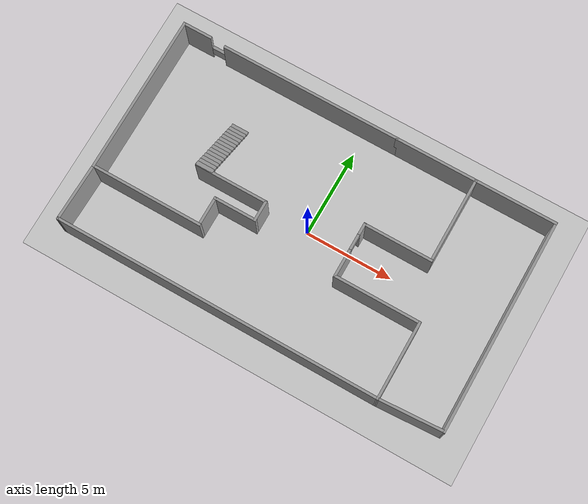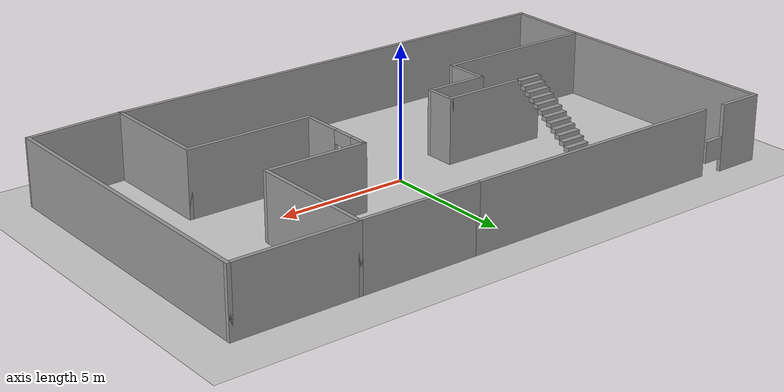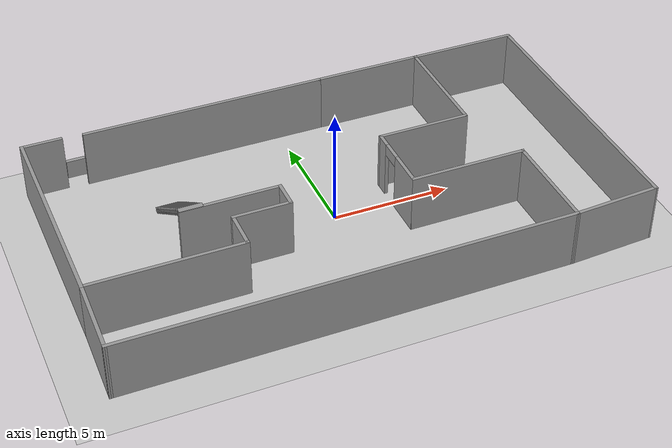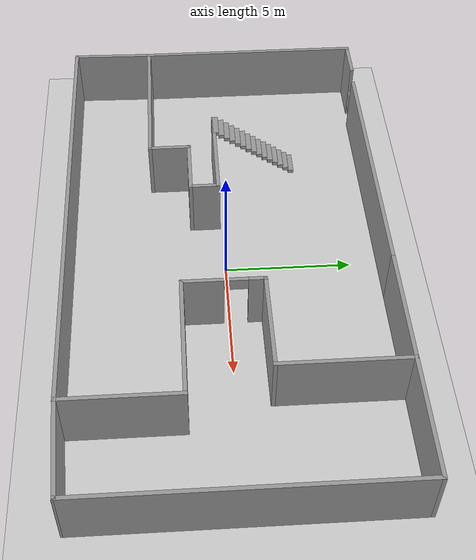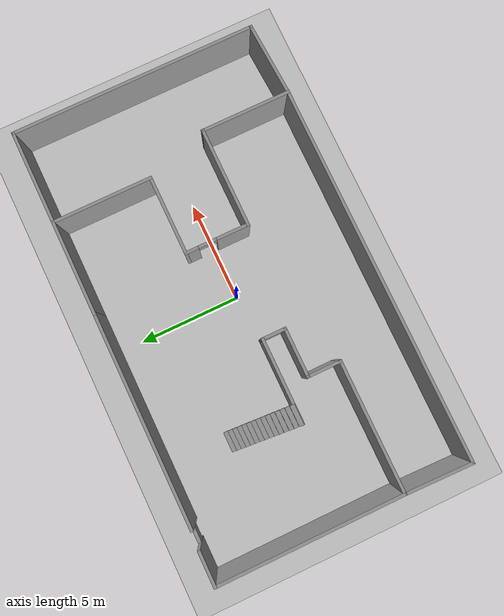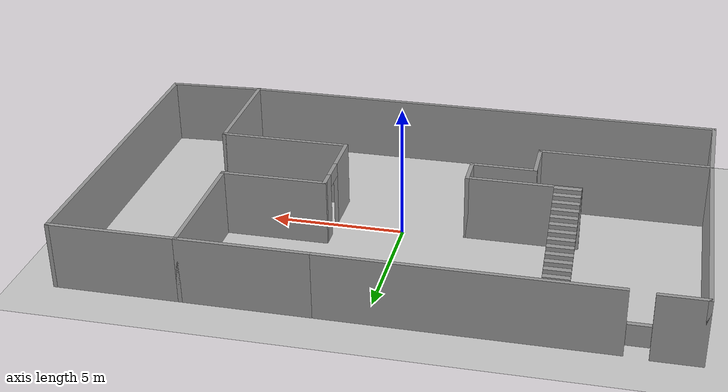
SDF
<sdf version="1.6">
 <world name="default">
  <light name="sun" type="directional">
   <pose>0 0 10 0 -0 0</pose>
   <diffuse>0.8 0.8 0.8 1</diffuse>
   <specular>0.2 0.2 0.2 1</specular>
   <attenuation>
    <range>1000</range>
    <constant>0.9</constant>
    <linear>0.01</linear>
    <quadratic>0.001</quadratic>
   </attenuation>
   <direction>-0.5 0.1 -0.9</direction>
  </light>
  <model name="ground_plane">
   <static>1</static>
   <link name="link">
    <collision name="collision">
     <geometry><plane><normal>0 0 1</normal><size>100 100</size></plane></geometry>
     <surface><friction><ode><mu>100</mu><mu2>50</mu2></ode></friction></surface>
    </collision>
    <visual name="visual">
     <cast_shadows>0</cast_shadows>
     <geometry><plane><normal>0 0 1</normal><size>100 100</size></plane></geometry>
     <material>
      <script><uri>file://media/materials/scripts/gazebo.material</uri><name>Gazebo/Grey</name></script>
     </material>
    </visual>
   </link>
  </model>
  <gravity>0 0 -9.8</gravity>
  <magnetic_field>6e-06 2.3e-05 -4.2e-05</magnetic_field>
  <atmosphere type="adiabatic"/>
  <physics name="default_physics" default="0" type="ode">
   <max_step_size>0.01</max_step_size>
   <real_time_factor>1</real_time_factor>
   <real_time_update_rate>100</real_time_update_rate>
  </physics>
  <scene><ambient>0.4 0.4 0.4 1</ambient><background>0.7 0.7 0.7 1</background><shadows>1</shadows></scene>
  <audio><device>default</device></audio>
  <spherical_coordinates>
   <surface_model>EARTH_WGS84</surface_model>
   <latitude_deg>0</latitude_deg>
   <longitude_deg>0</longitude_deg>
   <elevation>0</elevation>
   <heading_deg>0</heading_deg>
  </spherical_coordinates>
  <model name="sample_room">
   <pose>-0.047543 0.044067 0 0 -0 0</pose>
   <link name="Stairs_0">
    <visual name="Stairs_0_Visual_0">
     <pose>-5.98337 3.1343 0.083333 0 -0 0</pose>
     <geometry><box><size>1 0.233333 0.166667</size></box></geometry>
     <material>
      <script><uri>file://media/materials/scripts/gazebo.material</uri><name>Gazebo/Grey</name></script>
      <ambient>1 1 1 1</ambient>
     </material>
    </visual>
    <collision name="Stairs_0_Collision_0">
     <geometry><box><size>1 0.233333 0.166667</size></box></geometry>
     <pose>-5.98337 3.1343 0.083333 0 -0 0</pose>
    </collision>
    <visual name="Stairs_0_Visual_1">
     <pose>-5.98337 2.90096 0.25 0 -0 0</pose>
     <geometry><box><size>1 0.233333 0.166667</size></box></geometry>
     <material>
      <script><uri>file://media/materials/scripts/gazebo.material</uri><name>Gazebo/Grey</name></script>
      <ambient>1 1 1 1</ambient>
     </material>
    </visual>
    <collision name="Stairs_0_Collision_1">
     <geometry><box><size>1 0.233333 0.166667</size></box></geometry>
     <pose>-5.98337 2.90096 0.25 0 -0 0</pose>
    </collision>
    <visual name="Stairs_0_Visual_2">
     <pose>-5.98337 2.66763 0.416667 0 -0 0</pose>
     <geometry><box><size>1 0.233333 0.166667</size></box></geometry>
     <material>
      <script><uri>file://media/materials/scripts/gazebo.material</uri><name>Gazebo/Grey</name></script>
      <ambient>1 1 1 1</ambient>
     </material>
    </visual>
    <collision name="Stairs_0_Collision_2">
     <geometry><box><size>1 0.233333 0.166667</size></box></geometry>
     <pose>-5.98337 2.66763 0.416667 0 -0 0</pose>
    </collision>
    <visual name="Stairs_0_Visual_3">
     <pose>-5.98337 2.4343 0.583333 0 -0 0</pose>
     <geometry><box><size>1 0.233333 0.166667</size></box></geometry>
     <material>
      <script><uri>file://media/materials/scripts/gazebo.material</uri><name>Gazebo/Grey</name></script>
      <ambient>1 1 1 1</ambient>
     </material>
    </visual>
    <collision name="Stairs_0_Collision_3">
     <geometry><box><size>1 0.233333 0.166667</size></box></geometry>
     <pose>-5.98337 2.4343 0.583333 0 -0 0</pose>
    </collision>
    <visual name="Stairs_0_Visual_4">
     <pose>-5.98337 2.20097 0.75 0 -0 0</pose>
     <geometry><box><size>1 0.233333 0.166667</size></box></geometry>
     <material>
      <script><uri>file://media/materials/scripts/gazebo.material</uri><name>Gazebo/Grey</name></script>
      <ambient>1 1 1 1</ambient>
     </material>
    </visual>
    <collision name="Stairs_0_Collision_4">
     <geometry><box><size>1 0.233333 0.166667</size></box></geometry>
     <pose>-5.98337 2.20097 0.75 0 -0 0</pose>
    </collision>
    <visual name="Stairs_0_Visual_5">
     <pose>-5.98337 1.96763 0.916667 0 -0 0</pose>
     <geometry><box><size>1 0.233333 0.166667</size></box></geometry>
     <material>
      <script><uri>file://media/materials/scripts/gazebo.material</uri><name>Gazebo/Grey</name></script>
      <ambient>1 1 1 1</ambient>
     </material>
    </visual>
    <collision name="Stairs_0_Collision_5">
     <geometry><box><size>1 0.233333 0.166667</size></box></geometry>
     <pose>-5.98337 1.96763 0.916667 0 -0 0</pose>
    </collision>
    <visual name="Stairs_0_Visual_6">
     <pose>-5.98337 1.7343 1.08333 0 -0 0</pose>
     <geometry><box><size>1 0.233333 0.166667</size></box></geometry>
     <material>
      <script><uri>file://media/materials/scripts/gazebo.material</uri><name>Gazebo/Grey</name></script>
      <ambient>1 1 1 1</ambient>
     </material>
    </visual>
    <collision name="Stairs_0_Collision_6">
     <geometry><box><size>1 0.233333 0.166667</size></box></geometry>
     <pose>-5.98337 1.7343 1.08333 0 -0 0</pose>
    </collision>
    <visual name="Stairs_0_Visual_7">
     <pose>-5.98337 1.50097 1.25 0 -0 0</pose>
     <geometry><box><size>1 0.233333 0.166667</size></box></geometry>
     <material>
      <script><uri>file://media/materials/scripts/gazebo.material</uri><name>Gazebo/Grey</name></script>
      <ambient>1 1 1 1</ambient>
     </material>
    </visual>
    <collision name="Stairs_0_Collision_7">
     <geometry><box><size>1 0.233333 0.166667</size></box></geometry>
     <pose>-5.98337 1.50097 1.25 0 -0 0</pose>
    </collision>
    <visual name="Stairs_0_Visual_8">
     <pose>-5.98337 1.26763 1.41667 0 -0 0</pose>
     <geometry><box><size>1 0.233333 0.166667</size></box></geometry>
     <material>
      <script><uri>file://media/materials/scripts/gazebo.material</uri><name>Gazebo/Grey</name></script>
      <ambient>1 1 1 1</ambient>
     </material>
    </visual>
    <collision name="Stairs_0_Collision_8">
     <geometry><box><size>1 0.233333 0.166667</size></box></geometry>
     <pose>-5.98337 1.26763 1.41667 0 -0 0</pose>
    </collision>
    <visual name="Stairs_0_Visual_9">
     <pose>-5.98337 1.0343 1.58333 0 -0 0</pose>
     <geometry><box><size>1 0.233333 0.166667</size></box></geometry>
     <material>
      <script><uri>file://media/materials/scripts/gazebo.material</uri><name>Gazebo/Grey</name></script>
      <ambient>1 1 1 1</ambient>
     </material>
    </visual>
    <collision name="Stairs_0_Collision_9">
     <geometry><box><size>1 0.233333 0.166667</size></box></geometry>
     <pose>-5.98337 1.0343 1.58333 0 -0 0</pose>
    </collision>
    <visual name="Stairs_0_Visual_10">
     <pose>-5.98337 0.800965 1.75 0 -0 0</pose>
     <geometry><box><size>1 0.233333 0.166667</size></box></geometry>
     <material>
      <script><uri>file://media/materials/scripts/gazebo.material</uri><name>Gazebo/Grey</name></script>
      <ambient>1 1 1 1</ambient>
     </material>
    </visual>
    <collision name="Stairs_0_Collision_10">
     <geometry><box><size>1 0.233333 0.166667</size></box></geometry>
     <pose>-5.98337 0.800965 1.75 0 -0 0</pose>
    </collision>
    <visual name="Stairs_0_Visual_11">
     <pose>-5.98337 0.567632 1.91667 0 -0 0</pose>
     <geometry><box><size>1 0.233333 0.166667</size></box></geometry>
     <material>
      <script><uri>file://media/materials/scripts/gazebo.material</uri><name>Gazebo/Grey</name></script>
      <ambient>1 1 1 1</ambient>
     </material>
    </visual>
    <collision name="Stairs_0_Collision_11">
     <geometry><box><size>1 0.233333 0.166667</size></box></geometry>
     <pose>-5.98337 0.567632 1.91667 0 -0 0</pose>
    </collision>
    <visual name="Stairs_0_Visual_12">
     <pose>-5.98337 0.334299 2.08333 0 -0 0</pose>
     <geometry><box><size>1 0.233333 0.166667</size></box></geometry>
     <material>
      <script><uri>file://media/materials/scripts/gazebo.material</uri><name>Gazebo/Grey</name></script>
      <ambient>1 1 1 1</ambient>
     </material>
    </visual>
    <collision name="Stairs_0_Collision_12">
     <geometry><box><size>1 0.233333 0.166667</size></box></geometry>
     <pose>-5.98337 0.334299 2.08333 0 -0 0</pose>
    </collision>
    <visual name="Stairs_0_Visual_13">
     <pose>-5.98337 0.100965 2.25 0 -0 0</pose>
     <geometry><box><size>1 0.233333 0.166667</size></box></geometry>
     <material>
      <script><uri>file://media/materials/scripts/gazebo.material</uri><name>Gazebo/Grey</name></script>
      <ambient>1 1 1 1</ambient>
     </material>
    </visual>
    <collision name="Stairs_0_Collision_13">
     <geometry><box><size>1 0.233333 0.166667</size></box></geometry>
     <pose>-5.98337 0.100965 2.25 0 -0 0</pose>
    </collision>
    <visual name="Stairs_0_Visual_14">
     <pose>-5.98337 -0.132368 2.41667 0 -0 0</pose>
     <geometry><box><size>1 0.233333 0.166667</size></box></geometry>
     <material>
      <script><uri>file://media/materials/scripts/gazebo.material</uri><name>Gazebo/Grey</name></script>
      <ambient>1 1 1 1</ambient>
     </material>
    </visual>
    <collision name="Stairs_0_Collision_14">
     <geometry><box><size>1 0.233333 0.166667</size></box></geometry>
     <pose>-5.98337 -0.132368 2.41667 0 -0 0</pose>
    </collision>
   </link>
   <link name="Wall_1">
    <collision name="Wall_1_Collision">
     <geometry><box><size>4.25 0.15 2.5</size></box></geometry>
     <pose>0 0 1.25 0 -0 0</pose>
    </collision>
    <visual name="Wall_1_Visual">
     <pose>0 0 1.25 0 -0 0</pose>
     <geometry><box><size>4.25 0.15 2.5</size></box></geometry>
     <material>
      <script><uri>file://media/materials/scripts/gazebo.material</uri><name>Gazebo/Grey</name></script>
      <ambient>1 1 1 1</ambient>
     </material>
    </visual>
    <pose>-4.37477 -0.208857 0 0 -0 0</pose>
   </link>
   <link name="Wall_10">
    <collision name="Wall_10_Collision">
     <geometry><box><size>4.75 0.15 2.5</size></box></geometry>
     <pose>0 0 1.25 0 -0 0</pose>
    </collision>
    <visual name="Wall_10_Visual">
     <pose>0 0 1.25 0 -0 0</pose>
     <geometry><box><size>4.75 0.15 2.5</size></box></geometry>
     <material>
      <script><uri>file://media/materials/scripts/gazebo.material</uri><name>Gazebo/Grey</name></script>
      <ambient>1 1 1 1</ambient>
     </material>
    </visual>
    <pose>4.19884 6.1129 0 0 -0 0</pose>
   </link>
   <link name="Wall_11">
    <collision name="Wall_11_Collision">
     <geometry><box><size>5 0.15 2.5</size></box></geometry>
     <pose>0 0 1.25 0 -0 0</pose>
    </collision>
    <visual name="Wall_11_Visual">
     <pose>0 0 1.25 0 -0 0</pose>
     <geometry><box><size>5 0.15 2.5</size></box></geometry>
     <material>
      <script><uri>file://media/materials/scripts/gazebo.material</uri><name>Gazebo/Grey</name></script>
      <ambient>1 1 1 1</ambient>
     </material>
    </visual>
    <pose>6.49884 3.6879 0 0 0 -1.5708</pose>
   </link>
   <link name="Wall_12">
    <collision name="Wall_12_Collision">
     <geometry><box><size>4 0.15 2.5</size></box></geometry>
     <pose>0 0 1.25 0 -0 0</pose>
    </collision>
    <visual name="Wall_12_Visual">
     <pose>0 0 1.25 0 -0 0</pose>
     <geometry><box><size>4 0.15 2.5</size></box></geometry>
     <material>
      <script><uri>file://media/materials/scripts/gazebo.material</uri><name>Gazebo/Grey</name></script>
      <ambient>1 1 1 1</ambient>
     </material>
    </visual>
    <pose>4.57384 1.2629 0 0 -0 3.14159</pose>
   </link>
   <link name="Wall_13">
    <pose>2.64884 -0.287099 0 0 0 -1.5708</pose>
    <visual name="Wall_13_Visual_0">
     <pose>-1.27438 0 1.25 0 -0 0</pose>
     <geometry><box><size>0.701241 0.15 2.5</size></box></geometry>
     <material>
      <script><uri>file://media/materials/scripts/gazebo.material</uri><name>Gazebo/Grey</name></script>
      <ambient>1 1 1 1</ambient>
     </material>
    </visual>
    <collision name="Wall_13_Collision_0">
     <geometry><box><size>0.701241 0.15 2.5</size></box></geometry>
     <pose>-1.27438 0 1.25 0 -0 0</pose>
    </collision>
    <visual name="Wall_13_Visual_1">
     <pose>0.80062 0 1.25 0 -0 0</pose>
     <geometry><box><size>1.64876 0.15 2.5</size></box></geometry>
     <material>
      <script><uri>file://media/materials/scripts/gazebo.material</uri><name>Gazebo/Grey</name></script>
      <ambient>1 1 1 1</ambient>
     </material>
    </visual>
    <collision name="Wall_13_Collision_1">
     <geometry><box><size>1.64876 0.15 2.5</size></box></geometry>
     <pose>0.80062 0 1.25 0 -0 0</pose>
    </collision>
    <visual name="Wall_13_Visual_2">
     <pose>-0.473759 0 2.25 0 -0 0</pose>
     <geometry><box><size>0.9 0.15 0.5</size></box></geometry>
     <material>
      <script><uri>file://media/materials/scripts/gazebo.material</uri><name>Gazebo/Grey</name></script>
      <ambient>1 1 1 1</ambient>
     </material>
    </visual>
    <collision name="Wall_13_Collision_2">
     <geometry><box><size>0.9 0.15 0.5</size></box></geometry>
     <pose>-0.473759 0 2.25 0 -0 0</pose>
    </collision>
   </link>
   <link name="Wall_14">
    <collision name="Wall_14_Collision">
     <geometry><box><size>5 0.15 2.5</size></box></geometry>
     <pose>0 0 1.25 0 -0 0</pose>
    </collision>
    <visual name="Wall_14_Visual">
     <pose>0 0 1.25 0 -0 0</pose>
     <geometry><box><size>5 0.15 2.5</size></box></geometry>
     <material>
      <script><uri>file://media/materials/scripts/gazebo.material</uri><name>Gazebo/Grey</name></script>
      <ambient>1 1 1 1</ambient>
     </material>
    </visual>
    <pose>5.07384 -1.8371 0 0 -0 0</pose>
   </link>
   <link name="Wall_15">
    <collision name="Wall_15_Collision">
     <geometry><box><size>4.5 0.15 2.5</size></box></geometry>
     <pose>0 0 1.25 0 -0 0</pose>
    </collision>
    <visual name="Wall_15_Visual">
     <pose>0 0 1.25 0 -0 0</pose>
     <geometry><box><size>4.5 0.15 2.5</size></box></geometry>
     <material>
      <script><uri>file://media/materials/scripts/gazebo.material</uri><name>Gazebo/Grey</name></script>
      <ambient>1 1 1 1</ambient>
     </material>
    </visual>
    <pose>7.49884 -4.0121 0 0 0 -1.5708</pose>
   </link>
   <link name="Wall_16">
    <collision name="Wall_16_Collision">
     <geometry><box><size>18.75 0.15 2.5</size></box></geometry>
     <pose>0 0 1.25 0 -0 0</pose>
    </collision>
    <visual name="Wall_16_Visual">
     <pose>0 0 1.25 0 -0 0</pose>
     <geometry><box><size>18.75 0.15 2.5</size></box></geometry>
     <material>
      <script><uri>file://media/materials/scripts/gazebo.material</uri><name>Gazebo/Grey</name></script>
      <ambient>1 1 1 1</ambient>
     </material>
    </visual>
    <pose>-1.80116 -6.1871 0 0 -0 3.14159</pose>
   </link>
   <link name="Wall_17">
    <collision name="Wall_17_Collision">
     <geometry><box><size>3.42913 0.15 2.5</size></box></geometry>
     <pose>0 0 1.25 0 -0 0</pose>
    </collision>
    <visual name="Wall_17_Visual">
     <pose>0 0 1.25 0 -0 0</pose>
     <geometry><box><size>3.42913 0.15 2.5</size></box></geometry>
     <material>
      <script><uri>file://media/materials/scripts/gazebo.material</uri><name>Gazebo/Grey</name></script>
      <ambient>1 1 1 1</ambient>
     </material>
    </visual>
    <pose>-11.063 -4.54798 0 0 -0 1.5475</pose>
   </link>
   <link name="Wall_19">
    <collision name="Wall_19_Collision">
     <geometry><box><size>4.75 0.15 2.5</size></box></geometry>
     <pose>0 0 1.25 0 -0 0</pose>
    </collision>
    <visual name="Wall_19_Visual">
     <pose>0 0 1.25 0 -0 0</pose>
     <geometry><box><size>4.75 0.15 2.5</size></box></geometry>
     <material>
      <script><uri>file://media/materials/scripts/gazebo.material</uri><name>Gazebo/Grey</name></script>
      <ambient>1 1 1 1</ambient>
     </material>
    </visual>
    <pose>8.79884 6.1129 0 0 -0 0</pose>
   </link>
   <link name="Wall_2">
    <collision name="Wall_2_Collision">
     <geometry><box><size>1.25 0.15 2.5</size></box></geometry>
     <pose>0 0 1.25 0 -0 0</pose>
    </collision>
    <visual name="Wall_2_Visual">
     <pose>0 0 1.25 0 -0 0</pose>
     <geometry><box><size>1.25 0.15 2.5</size></box></geometry>
     <material>
      <script><uri>file://media/materials/scripts/gazebo.material</uri><name>Gazebo/Grey</name></script>
      <ambient>1 1 1 1</ambient>
     </material>
    </visual>
    <pose>-2.32477 -0.758857 0 0 0 -1.5708</pose>
   </link>
   <link name="Wall_20">
    <collision name="Wall_20_Collision">
     <geometry><box><size>12.25 0.15 2.5</size></box></geometry>
     <pose>0 0 1.25 0 -0 0</pose>
    </collision>
    <visual name="Wall_20_Visual">
     <pose>0 0 1.25 0 -0 0</pose>
     <geometry><box><size>12.25 0.15 2.5</size></box></geometry>
     <material>
      <script><uri>file://media/materials/scripts/gazebo.material</uri><name>Gazebo/Grey</name></script>
      <ambient>1 1 1 1</ambient>
     </material>
    </visual>
    <pose>11.0988 0.062901 0 0 0 -1.5708</pose>
   </link>
   <link name="Wall_21">
    <collision name="Wall_21_Collision">
     <geometry><box><size>3.75555 0.15 2.5</size></box></geometry>
     <pose>0 0 1.25 0 -0 0</pose>
    </collision>
    <visual name="Wall_21_Visual">
     <pose>0 0 1.25 0 -0 0</pose>
     <geometry><box><size>3.75555 0.15 2.5</size></box></geometry>
     <material>
      <script><uri>file://media/materials/scripts/gazebo.material</uri><name>Gazebo/Grey</name></script>
      <ambient>1 1 1 1</ambient>
     </material>
    </visual>
    <pose>9.29884 -6.0871 0 0 0 -3.08609</pose>
   </link>
   <link name="Wall_3">
    <collision name="Wall_3_Collision">
     <geometry><box><size>2.5 0.15 2.5</size></box></geometry>
     <pose>0 0 1.25 0 -0 0</pose>
    </collision>
    <visual name="Wall_3_Visual">
     <pose>0 0 1.25 0 -0 0</pose>
     <geometry><box><size>2.5 0.15 2.5</size></box></geometry>
     <material>
      <script><uri>file://media/materials/scripts/gazebo.material</uri><name>Gazebo/Grey</name></script>
      <ambient>1 1 1 1</ambient>
     </material>
    </visual>
    <pose>-3.49977 -1.30886 0 0 -0 3.14159</pose>
   </link>
   <link name="Wall_4">
    <collision name="Wall_4_Collision">
     <geometry><box><size>1.75 0.15 2.5</size></box></geometry>
     <pose>0 0 1.25 0 -0 0</pose>
    </collision>
    <visual name="Wall_4_Visual">
     <pose>0 0 1.25 0 -0 0</pose>
     <geometry><box><size>1.75 0.15 2.5</size></box></geometry>
     <material>
      <script><uri>file://media/materials/scripts/gazebo.material</uri><name>Gazebo/Grey</name></script>
      <ambient>1 1 1 1</ambient>
     </material>
    </visual>
    <pose>-4.67477 -2.10886 0 0 0 -1.5708</pose>
   </link>
   <link name="Wall_5">
    <collision name="Wall_5_Collision">
     <geometry><box><size>6.5 0.15 2.5</size></box></geometry>
     <pose>0 0 1.25 0 -0 0</pose>
    </collision>
    <visual name="Wall_5_Visual">
     <pose>0 0 1.25 0 -0 0</pose>
     <geometry><box><size>6.5 0.15 2.5</size></box></geometry>
     <material>
      <script><uri>file://media/materials/scripts/gazebo.material</uri><name>Gazebo/Grey</name></script>
      <ambient>1 1 1 1</ambient>
     </material>
    </visual>
    <pose>-7.84977 -2.90886 0 0 -0 3.14159</pose>
   </link>
   <link name="Wall_6">
    <collision name="Wall_6_Collision">
     <geometry><box><size>9.25 0.15 2.5</size></box></geometry>
     <pose>0 0 1.25 0 -0 0</pose>
    </collision>
    <visual name="Wall_6_Visual">
     <pose>0 0 1.25 0 -0 0</pose>
     <geometry><box><size>9.25 0.15 2.5</size></box></geometry>
     <material>
      <script><uri>file://media/materials/scripts/gazebo.material</uri><name>Gazebo/Grey</name></script>
      <ambient>1 1 1 1</ambient>
     </material>
    </visual>
    <pose>-11.0248 1.64114 0 0 -0 1.5708</pose>
   </link>
   <link name="Wall_7">
    <collision name="Wall_7_Collision">
     <geometry><box><size>1.75 0.15 2.5</size></box></geometry>
     <pose>0 0 1.25 0 -0 0</pose>
    </collision>
    <visual name="Wall_7_Visual">
     <pose>0 0 1.25 0 -0 0</pose>
     <geometry><box><size>1.75 0.15 2.5</size></box></geometry>
     <material>
      <script><uri>file://media/materials/scripts/gazebo.material</uri><name>Gazebo/Grey</name></script>
      <ambient>1 1 1 1</ambient>
     </material>
    </visual>
    <pose>-10.2248 6.19114 0 0 -0 0</pose>
   </link>
   <link name="Wall_9">
    <collision name="Wall_9_Collision">
     <geometry><box><size>10.5 0.15 2.5</size></box></geometry>
     <pose>0 0 1.25 0 -0 0</pose>
    </collision>
    <visual name="Wall_9_Visual">
     <pose>0 0 1.25 0 -0 0</pose>
     <geometry><box><size>10.5 0.15 2.5</size></box></geometry>
     <material>
      <script><uri>file://media/materials/scripts/gazebo.material</uri><name>Gazebo/Grey</name></script>
      <ambient>1 1 1 1</ambient>
     </material>
    </visual>
    <pose>-3.27616 6.1129 0 0 -0 0</pose>
   </link>
   <link name="Window_0">
    <collision name="Window_0_Collision">
     <geometry><box><size>0.8 0.17 0.8</size></box></geometry>
     <pose>0 0 0.4 0 -0 0</pose>
    </collision>
    <visual name="Window_0_Visual">
     <pose>0 0 0.4 0 -0 0</pose>
     <geometry><box><size>0.8 0.17 0.8</size></box></geometry>
     <material>
      <script><uri>file://media/materials/scripts/gazebo.material</uri><name>Gazebo/Grey</name></script>
     </material>
    </visual>
    <pose>-8.93663 6.19381 0.5 0 -0 0</pose>
   </link>
   <static>1</static>
  </model>
 </world>
</sdf>
